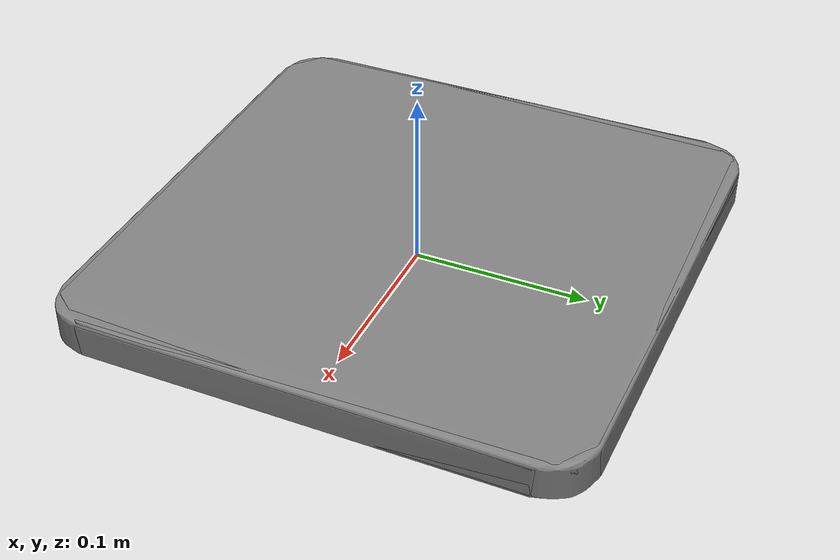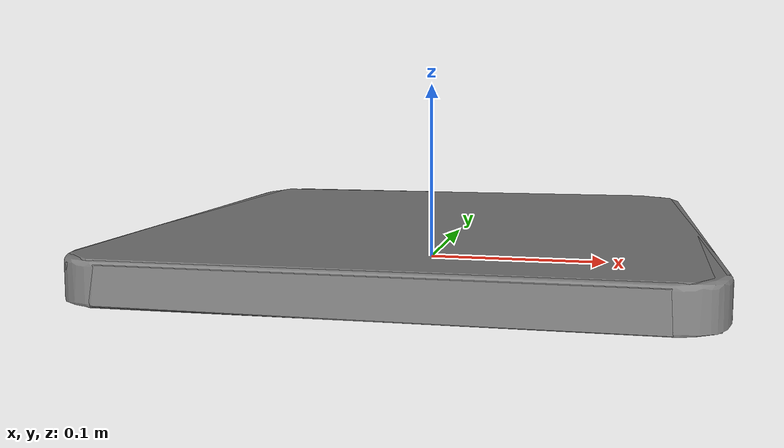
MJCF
<mujoco model="chopping_board1">
  <asset>
    <mesh file="../../meshes/train/chopping_board1/simple_mesh.stl" name="chopping_board1_mesh" scale="1 1 1"/>
    <mesh file="../../meshes/train/chopping_board1/chopping_board1_hull_1.stl" name="chopping_board1_hull_mesh_1" scale="1 1 1"/>
  </asset>
  <worldbody>
    <body>
      <body name="object">
        <geom pos="0 0 0" mesh="chopping_board1_mesh" type="mesh" contype="0" conaffinity="0" group="1"/>
        <geom pos="0 0 0" mesh="chopping_board1_hull_mesh_1" type="mesh" margin="0.001" solimp="0.998 0.998 0.001" solref="0.001 1" density="2000" friction="0.95 0.3 0.1" group="0" condim="4"/>
      </body>
      <site rgba="0 0 0 0" size="0.005" pos="0 0 -0.001" name="bottom_site"/>
      <site rgba="0 0 0 0" size="0.005" pos="0 0 0.02" name="top_site"/>
      <site rgba="0 0 0 0" size="0.005" pos="0.0375 0.02 0" name="horizontal_radius_site"/>
    </body>
  </worldbody>
</mujoco>
